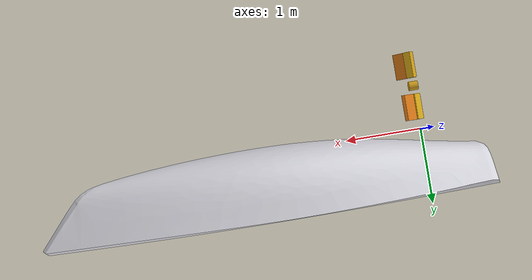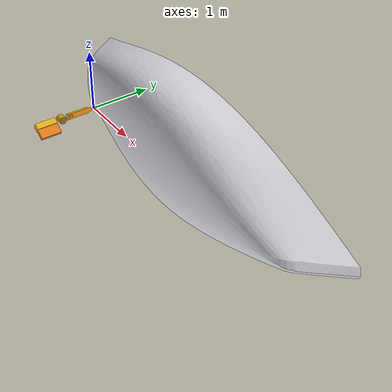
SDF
<?xml version="1.0" ?>
<sdf version="1.6">
  <world name="world">
    <model name="toy_boat">
      <pose>0 0 0 0 0 0</pose>

      <!-- ===================== HULL (base link) ====================== -->
      <link name="base_link">
        <pose>0 0 0 0 0 0</pose>
        <inertial>
          <pose>2.2206 0.3664 0 0 0 0</pose>
          <mass>1631.0</mass>
          <inertia>
            <ixx>789.0</ixx>  <ixy>0</ixy> <ixz>0</ixz>
            <iyy>5559.0</iyy> <iyz>0</iyz>
            <izz>5015.0</izz>
          </inertia>
        </inertial>
        <collision name="hull_collision">
          <pose>0 0 0 0 0 0</pose>
          <geometry><mesh><uri>../sdfs/DSYHS/OBJ/hull.obj</uri><scale>0.0026970 0.0026970 0.0026970</scale></mesh></geometry>
        </collision>
        <visual name="hull_visual">
          <pose>0 0 0 0 0 0</pose>
          <geometry><mesh><uri>../sdfs/DSYHS/OBJ/hull.obj</uri><scale>0.0026970 0.0026970 0.0026970</scale></mesh></geometry>
          <material><ambient>0.85 0.85 0.88 1</ambient><diffuse>0.85 0.85 0.88 1</diffuse></material>
        </visual>
      </link>

      <!-- ===================== KEEL (ballast) ======================== -->
      <link name="keel_link">
        <pose>0 0 0 0 0 0</pose>
        <inertial>
          <!-- 2000 kg at Y=-0.80: extreme keel for maximum righting moment.
               COM → Y≈-0.32, world Z≈-0.06 (0.46 m below waterline). -->
          <pose>1.5 -0.80 0 0 0 0</pose>
          <mass>315.0</mass>
          <inertia>
            <ixx>9.9</ixx>  <ixy>0</ixy> <ixz>0</ixz>
            <iyy>52.2</iyy>  <iyz>0</iyz>
            <izz>60.6</izz>
          </inertia>
        </inertial>
        <collision name="keel_collision">
          <pose>0 0 0 0 0 0</pose>
          <geometry><mesh><uri>../sdfs/DSYHS/OBJ/keel.obj</uri><scale>0.0026970 0.0026970 0.0026970</scale></mesh></geometry>
        </collision>
        <visual name="keel_visual">
          <pose>0 0 0 0 0 0</pose>
          <geometry><mesh><uri>../sdfs/DSYHS/OBJ/keel.obj</uri><scale>0.0026970 0.0026970 0.0026970</scale></mesh></geometry>
          <material><ambient>0.6 0.6 0.62 1</ambient><diffuse>0.6 0.6 0.62 1</diffuse></material>
        </visual>
      </link>

      <!-- ===================== RUDDER ================================ -->
      <link name="rudder_link">
        <pose>0 0 0 0 0 0</pose>
        <inertial>
          <pose>-0.2113 0.0233 0 0 0 0</pose>
          <mass>20.0</mass>
          <inertia>
            <ixx>0.86</ixx>  <ixy>0</ixy> <ixz>0</ixz>
            <iyy>0.20</iyy>  <iyz>0</iyz>
            <izz>1.06</izz>
          </inertia>
        </inertial>
        <collision name="rudder_collision">
          <pose>0 0 0 0 0 0</pose>
          <geometry><mesh><uri>../sdfs/DSYHS/OBJ/rudder.obj</uri><scale>0.0026970 0.0026970 0.0026970</scale></mesh></geometry>
        </collision>
        <visual name="rudder_visual">
          <pose>0 0 0 0 0 0</pose>
          <geometry><mesh><uri>../sdfs/DSYHS/OBJ/rudder.obj</uri><scale>0.0026970 0.0026970 0.0026970</scale></mesh></geometry>
          <material><ambient>0.7 0.2 0.15 1</ambient><diffuse>0.7 0.2 0.15 1</diffuse></material>
        </visual>
      </link>

      <!-- Rigid welds attaching keel + rudder to the hull -->
      <joint name="joint_keel" type="fixed">
        <parent>base_link</parent><child>keel_link</child><pose>0 0 0 0 0 0</pose>
      </joint>
      <joint name="joint_rudder" type="fixed">
        <parent>base_link</parent><child>rudder_link</child><pose>0 0 0 0 0 0</pose>
      </joint>

      <link name="propeller_hub">
        <pose>0.0 -0.58 0.0 0 0 0</pose>
        <inertial><pose>0 0 0 0 0 0</pose><mass>13.572</mass>
          <inertia><ixx>0.02443</ixx><ixy>0</ixy><ixz>0</ixz><iyy>0.02851</iyy><iyz>0</iyz><izz>0.02851</izz></inertia></inertial>
        <collision name="propeller_hub_collision"><pose>0 0 0 0 1.5707963267948966 0</pose>
          <geometry><cylinder><radius>0.06</radius><length>0.12</length></cylinder></geometry></collision>
        <visual name="propeller_hub_visual"><pose>0 0 0 0 1.5707963267948966 0</pose>
          <geometry><cylinder><radius>0.06</radius><length>0.12</length></cylinder></geometry>
          <material><ambient>0.8 0.6 0.1 1</ambient><diffuse>0.8 0.6 0.1 1</diffuse><specular>0.4 0.4 0.4 1</specular></material></visual>
      </link>

      <!-- Blade 0: pointing -Y (down), pitched +0.6 about Y.
           Span 0.34 (inner edge r=0.11, tip r=0.45), centre at r=0.28. -->
      <link name="blade_0">
        <pose>0.0 -0.86 0.0 0 0.6 0</pose>
        <inertial><pose>0 0 0 0 0 0</pose><mass>12.0</mass>
          <inertia><ixx>0.12560</ixx><ixy>0</ixy><ixz>0</ixz><iyy>0.02000</iyy><iyz>0</iyz><izz>0.12560</izz></inertia></inertial>
        <collision name="blade_0_collision"><pose>0 0 0 0 0 0</pose>
          <geometry><box><size>0.10 0.34 0.10</size></box></geometry></collision>
        <visual name="blade_0_visual"><pose>0 0 0 0 0 0</pose>
          <geometry><box><size>0.10 0.34 0.10</size></box></geometry>
          <material><ambient>0.9 0.7 0.1 1</ambient><diffuse>0.9 0.7 0.1 1</diffuse><specular>0.4 0.4 0.4 1</specular></material></visual>
      </link>

      <!-- Blade 1: pointing +Y (up), pitched -0.6 about Y (opposite).
           Span 0.34, centre at r=0.28; tip at Y=-0.13, clears hull (-0.094). -->
      <link name="blade_1">
        <pose>0.0 -0.30 0.0 0 -0.6 0</pose>
        <inertial><pose>0 0 0 0 0 0</pose><mass>12.0</mass>
          <inertia><ixx>0.12560</ixx><ixy>0</ixy><ixz>0</ixz><iyy>0.02000</iyy><iyz>0</iyz><izz>0.12560</izz></inertia></inertial>
        <collision name="blade_1_collision"><pose>0 0 0 0 0 0</pose>
          <geometry><box><size>0.10 0.34 0.10</size></box></geometry></collision>
        <visual name="blade_1_visual"><pose>0 0 0 0 0 0</pose>
          <geometry><box><size>0.10 0.34 0.10</size></box></geometry>
          <material><ambient>0.9 0.7 0.1 1</ambient><diffuse>0.9 0.7 0.1 1</diffuse><specular>0.4 0.4 0.4 1</specular></material></visual>
      </link>

      <link name="blade_0_rib">
        <pose>0.10729 -0.86 -0.07340 0 0.6 0</pose>
        <inertial><pose>0 0 0 0 0 0</pose><mass>3.0</mass>
          <inertia><ixx>0.02980</ixx><ixy>0</ixy><ixz>0</ixz><iyy>0.00730</iyy><iyz>0</iyz><izz>0.03530</izz></inertia></inertial>
        <collision name="blade_0_rib_collision"><pose>0 0 0 0 0 0</pose>
          <geometry><box><size>0.16 0.34 0.06</size></box></geometry></collision>
        <visual name="blade_0_rib_visual"><pose>0 0 0 0 0 0</pose>
          <geometry><box><size>0.16 0.34 0.06</size></box></geometry>
          <material><ambient>0.9 0.5 0.1 1</ambient><diffuse>0.9 0.5 0.1 1</diffuse></material></visual>
      </link>
      <link name="blade_1_rib">
        <pose>0.10729 -0.30 0.07340 0 -0.6 0</pose>
        <inertial><pose>0 0 0 0 0 0</pose><mass>3.0</mass>
          <inertia><ixx>0.02980</ixx><ixy>0</ixy><ixz>0</ixz><iyy>0.00730</iyy><iyz>0</iyz><izz>0.03530</izz></inertia></inertial>
        <collision name="blade_1_rib_collision"><pose>0 0 0 0 0 0</pose>
          <geometry><box><size>0.16 0.34 0.06</size></box></geometry></collision>
        <visual name="blade_1_rib_visual"><pose>0 0 0 0 0 0</pose>
          <geometry><box><size>0.16 0.34 0.06</size></box></geometry>
          <material><ambient>0.9 0.5 0.1 1</ambient><diffuse>0.9 0.5 0.1 1</diffuse></material></visual>
      </link>

      <joint name="joint_propeller" type="revolute">
        <parent>base_link</parent><child>propeller_hub</child><pose>0 0 0 0 0 0</pose>
        <axis><xyz>1 0 0</xyz><limit><lower>-1e16</lower><upper>1e16</upper></limit></axis>
      </joint>
      <joint name="joint_blade_0" type="fixed"><parent>propeller_hub</parent><child>blade_0</child><pose>0 0 0 0 0 0</pose></joint>
      <joint name="joint_blade_1" type="fixed"><parent>propeller_hub</parent><child>blade_1</child><pose>0 0 0 0 0 0</pose></joint>
      <joint name="joint_blade_0_rib" type="fixed"><parent>blade_0</parent><child>blade_0_rib</child><pose>0 0 0 0 0 0</pose></joint>
      <joint name="joint_blade_1_rib" type="fixed"><parent>blade_1</parent><child>blade_1_rib</child><pose>0 0 0 0 0 0</pose></joint>

    </model>
  </world>
</sdf>
